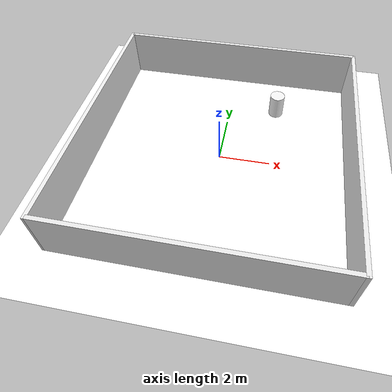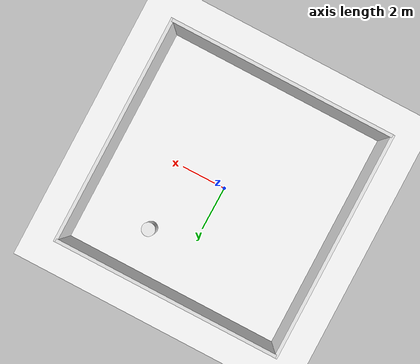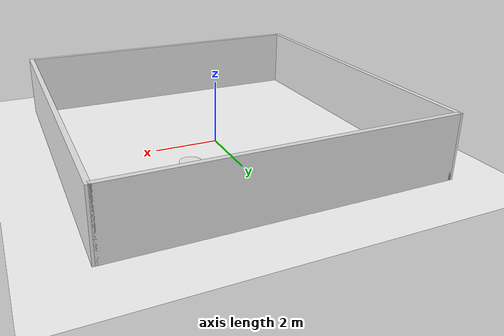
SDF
<?xml version="1.0" ?>
<sdf version="1.7">
  <world name="mapping_office">

    <physics name="1ms" type="ignored">
      <max_step_size>0.001</max_step_size>
      <real_time_factor>1.0</real_time_factor>
    </physics>

    <plugin filename="libgz-sim-physics-system.so" name="gz::sim::systems::Physics"/>
    <plugin filename="libgz-sim-sensors-system.so" name="gz::sim::systems::Sensors">
      <render_engine>ogre2</render_engine>
    </plugin>
    <plugin filename="libgz-sim-scene-broadcaster-system.so" name="gz::sim::systems::SceneBroadcaster"/>
    <plugin filename="libgz-sim-user-commands-system.so" name="gz::sim::systems::UserCommands"/>

    <light type="directional" name="sun">
      <cast_shadows>true</cast_shadows>
      <pose>0 0 10 0 0 0</pose>
      <diffuse>0.8 0.8 0.8 1</diffuse>
      <specular>0.2 0.2 0.2 1</specular>
      <direction>-0.5 0.1 -0.9</direction>
    </light>

    <model name="ground_plane">
      <static>true</static>
      <link name="link">
        <collision name="collision">
          <geometry>
            <plane>
              <normal>0 0 1</normal>
              <size>100 100</size>
            </plane>
          </geometry>
        </collision>
        <visual name="visual">
          <geometry>
            <plane>
              <normal>0 0 1</normal>
              <size>100 100</size>
            </plane>
          </geometry>
          <material>
            <ambient>1 1 1 1</ambient>
            <diffuse>1 1 1 1</diffuse>
            <specular>0 0 0 1</specular>
          </material>
        </visual>
      </link>
    </model>

    <model name="walls">
      <static>true</static>
      <link name="wall_north">
        <pose>0 5 1 0 0 0</pose>
        <collision name="collision">
          <geometry><box><size>10 0.15 2</size></box></geometry>
        </collision>
        <visual name="visual">
          <geometry><box><size>10 0.15 2</size></box></geometry>
          <material><ambient>0.9 0.9 0.9 1</ambient><diffuse>0.9 0.9 0.9 1</diffuse></material>
        </visual>
      </link>
      <link name="wall_south">
        <pose>0 -5 1 0 0 0</pose>
        <collision name="collision">
          <geometry><box><size>10 0.15 2</size></box></geometry>
        </collision>
        <visual name="visual">
          <geometry><box><size>10 0.15 2</size></box></geometry>
          <material><ambient>0.91 0.91 0.91 1</ambient><diffuse>0.91 0.91 0.91 1</diffuse></material>
        </visual>
      </link>
      <link name="wall_east">
        <pose>5 0 1 0 0 0</pose>
        <collision name="collision">
          <geometry><box><size>0.15 10.15 2</size></box></geometry>
        </collision>
        <visual name="visual">
          <geometry><box><size>0.15 10.15 2</size></box></geometry>
          <material><ambient>0.92 0.92 0.92 1</ambient><diffuse>0.92 0.92 0.92 1</diffuse></material>
        </visual>
      </link>
      <link name="wall_west">
        <pose>-5 0 1 0 0 0</pose>
        <collision name="collision">
          <geometry><box><size>0.15 10.15 2</size></box></geometry>
        </collision>
        <visual name="visual">
          <geometry><box><size>0.15 10.15 2</size></box></geometry>
          <material><ambient>0.93 0.93 0.93 1</ambient><diffuse>0.93 0.93 0.93 1</diffuse></material>
        </visual>
      </link>
    </model>

    <model name="cylinder_obstacle">
      <static>true</static>
      <pose>2 3 0.5 0 0 0</pose>
      <link name="link">
        <collision name="collision">
          <geometry><cylinder><radius>0.3</radius><length>1</length></cylinder></geometry>
        </collision>
        <visual name="visual">
          <geometry><cylinder><radius>0.3</radius><length>1</length></cylinder></geometry>
          <material><ambient>0.95 0.95 0.95 1</ambient><diffuse>0.95 0.95 0.95 1</diffuse></material>
        </visual>
      </link>
    </model>

  </world>
</sdf>
